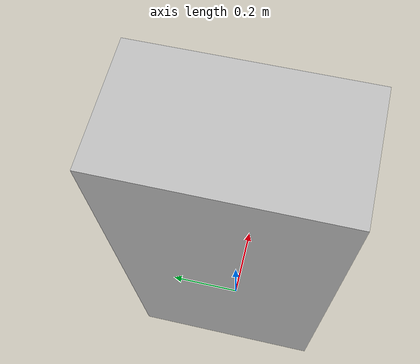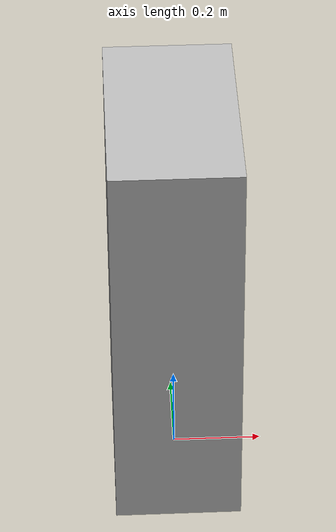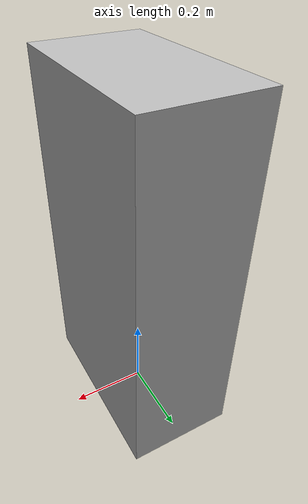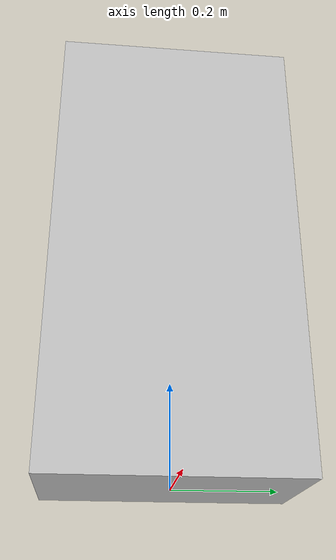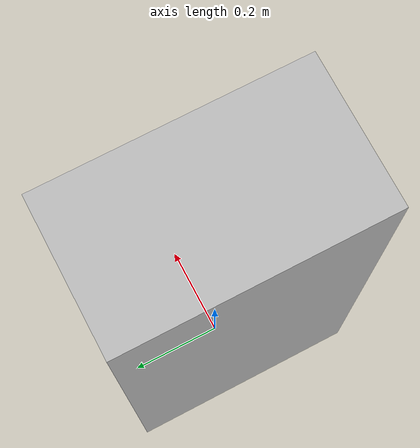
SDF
<?xml version="1.0" ?>
<sdf version="1.6">
  <model name="rwc2022/black_cabinet">
    <static>true</static>
    <link name="1_link">
      <collision name="1_col">
        <geometry>
          <box>
            <size>0.28 0.49 0.93</size>
          </box>
        </geometry>
      </collision>
      <visual name="1_vis">
        <geometry>
          <box>
            <size>0.28 0.49 0.93</size>
          </box>
        </geometry>
      </visual>
      <pose>0.0 0.0 0.465 0 0 0</pose>
    </link>
    <link name="on_top_of">
      <virtual_volume name="on_top_of_vv">
        <geometry>
          <box>
            <size>0.26 0.43 0.25</size>
          </box>
        </geometry>
        <pose>0.0 0.0 1.075 0 0 0</pose>
      </virtual_volume>
    </link>
    <link name="in_front_of">
      <virtual_volume name="in_front_of_vv">
        <geometry>
          <box>
            <size>0.2 0.29 0.01</size>
          </box>
        </geometry>
        <pose>0.64 0.0 0.005 0 0 0</pose>
      </virtual_volume>
    </link>
  </model>
</sdf>
